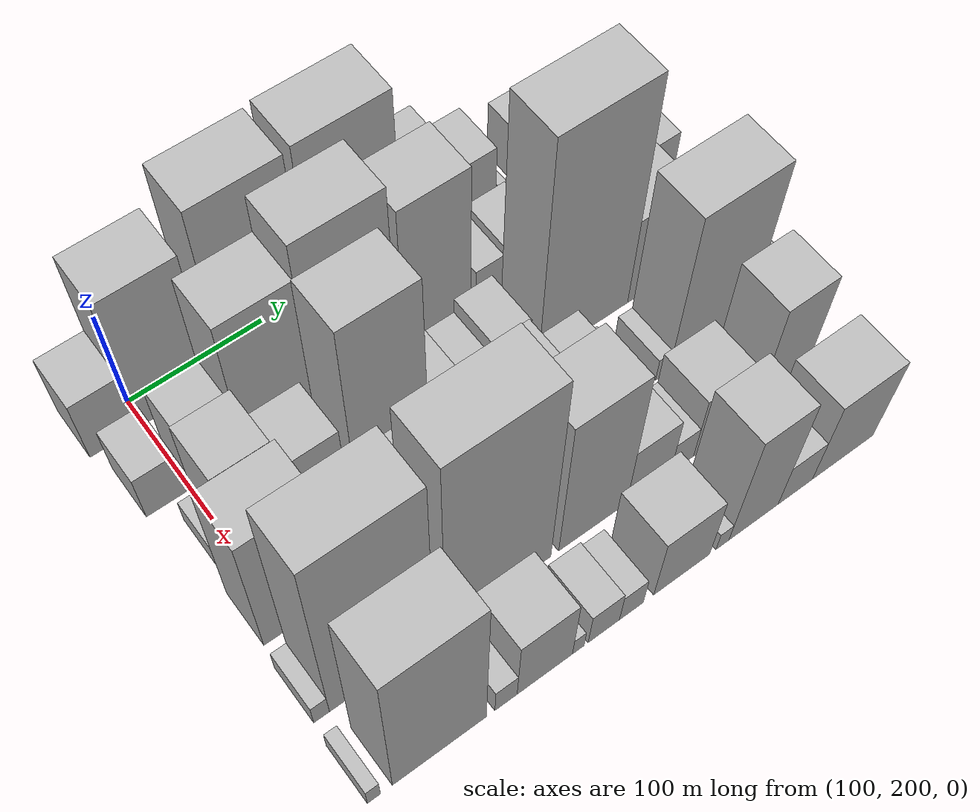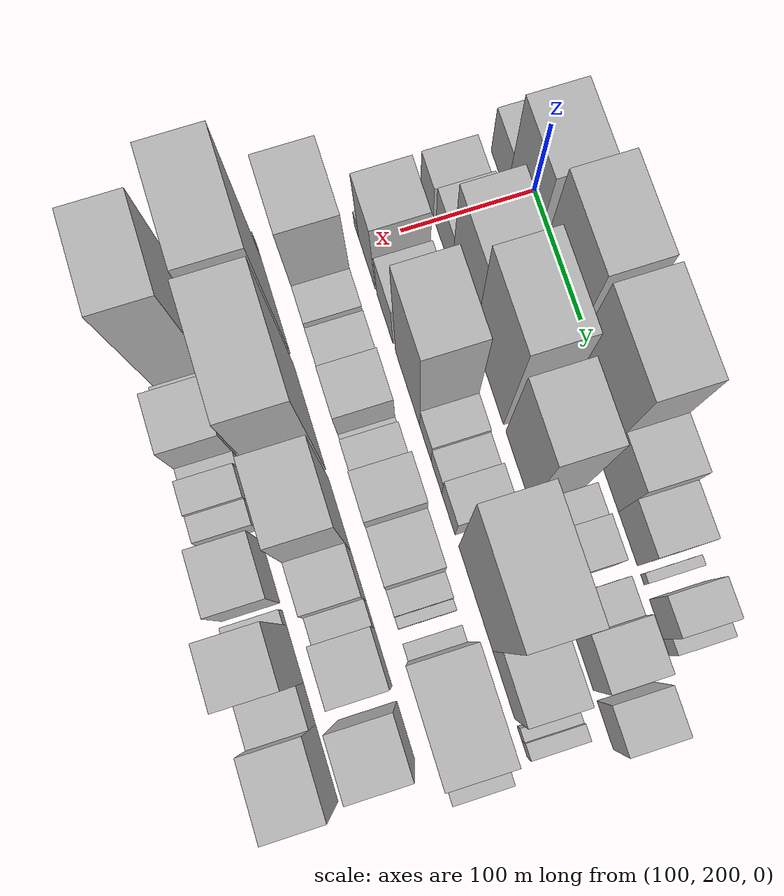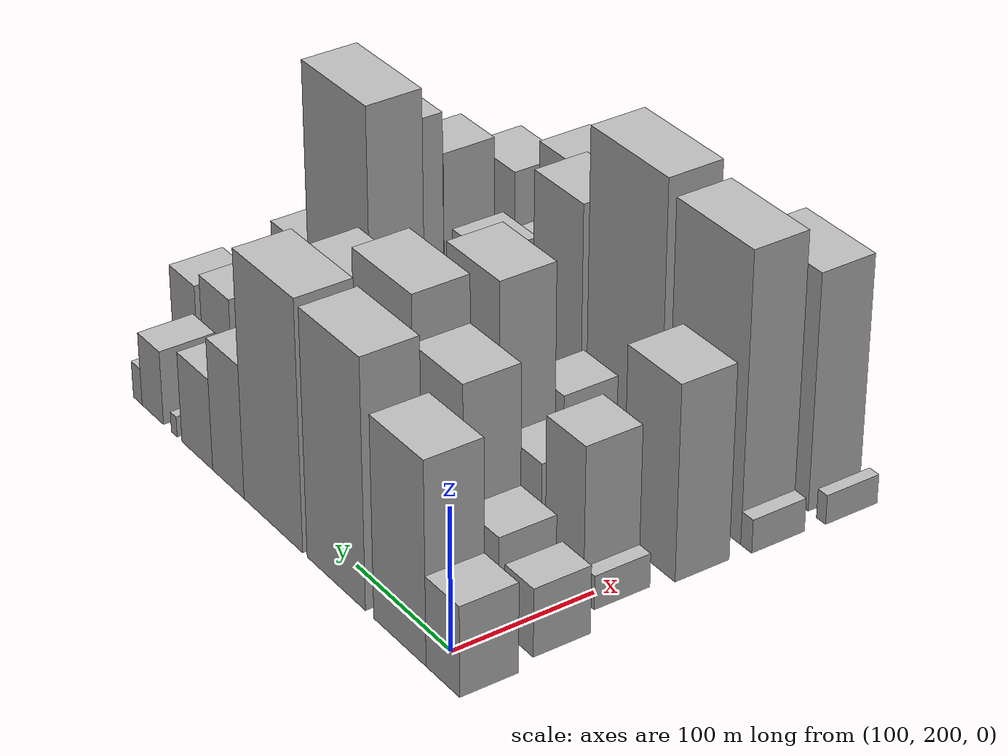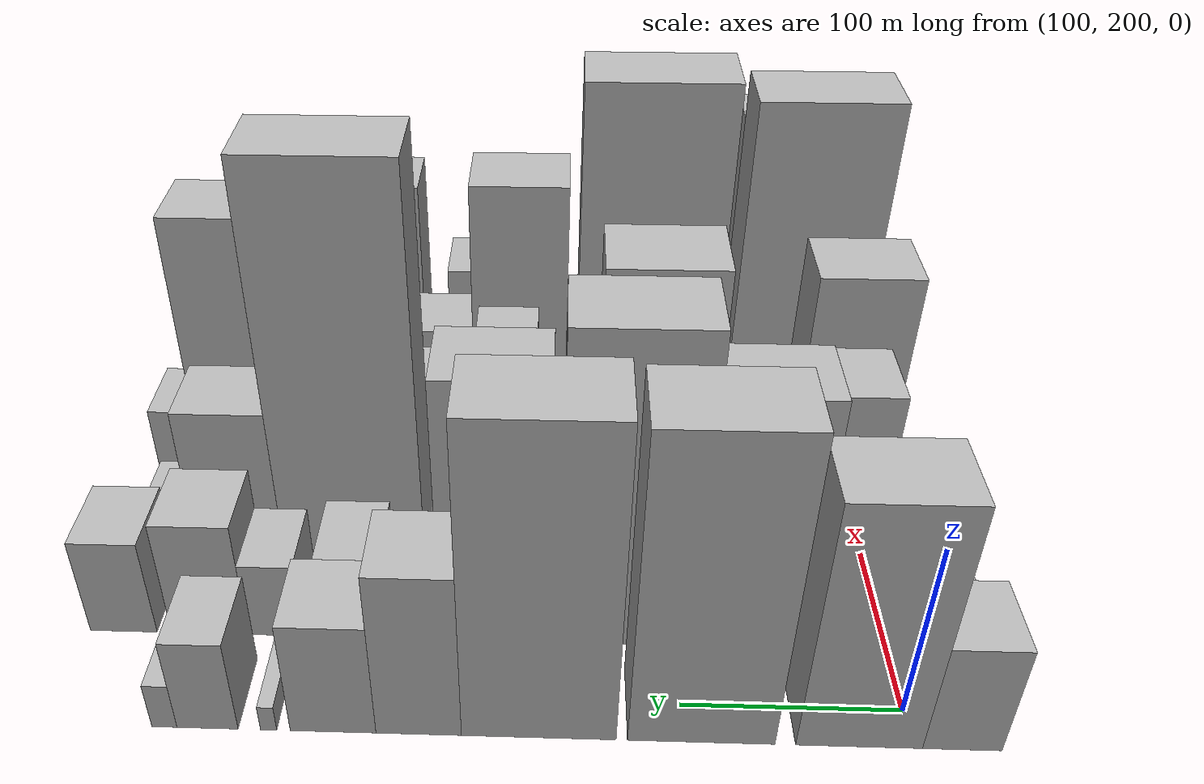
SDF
<sdf version="1.6">
 <world name="default">
  <model name="building_33">
   <static>1</static>
   <pose>100.0000 178.7573 0 0.000000 0.000000 0.000000</pose>
   <link name="link">
    <pose>0 0 31.50 0 0 0</pose>
    <collision name="collision"><geometry><box><size>40.0000 34.3332 63.0000</size></box></geometry></collision>
    <visual name="visual">
     <cast_shadows>0</cast_shadows>
     <geometry><box><size>40.0000 34.3332 63.0000</size></box></geometry>
     <material>
      <script>
       <uri>model://HANNAS_wall/materials/scripts</uri>
       <uri>model://HANNAS_wall/materials/textures</uri>
       <name>vrc/HANNAS_wall</name>
      </script>
     </material>
    </visual>
   </link>
  </model>
  <model name="building_34">
   <static>1</static>
   <pose>100.0000 223.4274 0 0.000000 0.000000 0.000000</pose>
   <link name="link">
    <pose>0 0 70.50 0 0 0</pose>
    <collision name="collision"><geometry><box><size>40.0000 55.0071 141.0000</size></box></geometry></collision>
    <visual name="visual">
     <cast_shadows>0</cast_shadows>
     <geometry><box><size>40.0000 55.0071 141.0000</size></box></geometry>
     <material>
      <script>
       <uri>model://HANNAS_wall/materials/scripts</uri>
       <uri>model://HANNAS_wall/materials/textures</uri>
       <name>vrc/HANNAS_wall</name>
      </script>
     </material>
    </visual>
   </link>
  </model>
  <model name="building_35">
   <static>1</static>
   <pose>100.0000 292.1436 0 0.000000 0.000000 0.000000</pose>
   <link name="link">
    <pose>0 0 87.00 0 0 0</pose>
    <collision name="collision"><geometry><box><size>40.0000 64.4253 174.0000</size></box></geometry></collision>
    <visual name="visual">
     <cast_shadows>0</cast_shadows>
     <geometry><box><size>40.0000 64.4253 174.0000</size></box></geometry>
     <material>
      <script>
       <uri>model://HANNAS_wall/materials/scripts</uri>
       <uri>model://HANNAS_wall/materials/textures</uri>
       <name>vrc/HANNAS_wall</name>
      </script>
     </material>
    </visual>
   </link>
  </model>
  <model name="building_36">
   <static>1</static>
   <pose>100.0000 363.3790 0 0.000000 0.000000 0.000000</pose>
   <link name="link">
    <pose>0 0 88.50 0 0 0</pose>
    <collision name="collision"><geometry><box><size>40.0000 68.0455 177.0000</size></box></geometry></collision>
    <visual name="visual">
     <cast_shadows>0</cast_shadows>
     <geometry><box><size>40.0000 68.0455 177.0000</size></box></geometry>
     <material>
      <script>
       <uri>model://HANNAS_wall/materials/scripts</uri>
       <uri>model://HANNAS_wall/materials/textures</uri>
       <name>vrc/HANNAS_wall</name>
      </script>
     </material>
    </visual>
   </link>
  </model>
  <model name="building_37">
   <static>1</static>
   <pose>100.0000 416.3116 0 0.000000 0.000000 0.000000</pose>
   <link name="link">
    <pose>0 0 48.00 0 0 0</pose>
    <collision name="collision"><geometry><box><size>40.0000 37.8197 96.0000</size></box></geometry></collision>
    <visual name="visual">
     <cast_shadows>0</cast_shadows>
     <geometry><box><size>40.0000 37.8197 96.0000</size></box></geometry>
     <material>
      <script>
       <uri>model://HANNAS_wall/materials/scripts</uri>
       <uri>model://HANNAS_wall/materials/textures</uri>
       <name>vrc/HANNAS_wall</name>
      </script>
     </material>
    </visual>
   </link>
  </model>
  <model name="building_38">
   <static>1</static>
   <pose>100.0000 454.2458 0 0.000000 0.000000 0.000000</pose>
   <link name="link">
    <pose>0 0 33.00 0 0 0</pose>
    <collision name="collision"><geometry><box><size>40.0000 38.0487 66.0000</size></box></geometry></collision>
    <visual name="visual">
     <cast_shadows>0</cast_shadows>
     <geometry><box><size>40.0000 38.0487 66.0000</size></box></geometry>
     <material>
      <script>
       <uri>model://HANNAS_wall/materials/scripts</uri>
       <uri>model://HANNAS_wall/materials/textures</uri>
       <name>vrc/HANNAS_wall</name>
      </script>
     </material>
    </visual>
   </link>
  </model>
  <model name="building_39">
   <static>1</static>
   <pose>100.0000 482.8758 0 0.000000 0.000000 0.000000</pose>
   <link name="link">
    <pose>0 0 7.50 0 0 0</pose>
    <collision name="collision"><geometry><box><size>40.0000 7.2112 15.0000</size></box></geometry></collision>
    <visual name="visual">
     <cast_shadows>0</cast_shadows>
     <geometry><box><size>40.0000 7.2112 15.0000</size></box></geometry>
     <material>
      <script>
       <uri>model://HANNAS_wall/materials/scripts</uri>
       <uri>model://HANNAS_wall/materials/textures</uri>
       <name>vrc/HANNAS_wall</name>
      </script>
     </material>
    </visual>
   </link>
  </model>
  <model name="building_40">
   <static>1</static>
   <pose>100.0000 510.1323 0 0.000000 0.000000 0.000000</pose>
   <link name="link">
    <pose>0 0 27.00 0 0 0</pose>
    <collision name="collision"><geometry><box><size>40.0000 27.3020 54.0000</size></box></geometry></collision>
    <visual name="visual">
     <cast_shadows>0</cast_shadows>
     <geometry><box><size>40.0000 27.3020 54.0000</size></box></geometry>
     <material>
      <script>
       <uri>model://HANNAS_wall/materials/scripts</uri>
       <uri>model://HANNAS_wall/materials/textures</uri>
       <name>vrc/HANNAS_wall</name>
      </script>
     </material>
    </visual>
   </link>
  </model>
  <model name="building_41">
   <static>1</static>
   <pose>100.0000 529.4038 0 0.000000 0.000000 0.000000</pose>
   <link name="link">
    <pose>0 0 13.50 0 0 0</pose>
    <collision name="collision"><geometry><box><size>40.0000 11.2409 27.0000</size></box></geometry></collision>
    <visual name="visual">
     <cast_shadows>0</cast_shadows>
     <geometry><box><size>40.0000 11.2409 27.0000</size></box></geometry>
     <material>
      <script>
       <uri>model://HANNAS_wall/materials/scripts</uri>
       <uri>model://HANNAS_wall/materials/textures</uri>
       <name>vrc/HANNAS_wall</name>
      </script>
     </material>
    </visual>
   </link>
  </model>
  <model name="building_88">
   <static>1</static>
   <pose>155.0000 182.9311 0 0.000000 0.000000 0.000000</pose>
   <link name="link">
    <pose>0 0 24.00 0 0 0</pose>
    <collision name="collision"><geometry><box><size>40.0000 28.5312 48.0000</size></box></geometry></collision>
    <visual name="visual">
     <cast_shadows>0</cast_shadows>
     <geometry><box><size>40.0000 28.5312 48.0000</size></box></geometry>
     <material>
      <script>
       <uri>model://HANNAS_wall/materials/scripts</uri>
       <uri>model://HANNAS_wall/materials/textures</uri>
       <name>vrc/HANNAS_wall</name>
      </script>
     </material>
    </visual>
   </link>
  </model>
  <model name="building_89">
   <static>1</static>
   <pose>155.0000 221.2587 0 0.000000 0.000000 0.000000</pose>
   <link name="link">
    <pose>0 0 31.50 0 0 0</pose>
    <collision name="collision"><geometry><box><size>40.0000 36.1242 63.0000</size></box></geometry></collision>
    <visual name="visual">
     <cast_shadows>0</cast_shadows>
     <geometry><box><size>40.0000 36.1242 63.0000</size></box></geometry>
     <material>
      <script>
       <uri>model://HANNAS_wall/materials/scripts</uri>
       <uri>model://HANNAS_wall/materials/textures</uri>
       <name>vrc/HANNAS_wall</name>
      </script>
     </material>
    </visual>
   </link>
  </model>
  <model name="building_90">
   <static>1</static>
   <pose>155.0000 265.2588 0 0.000000 0.000000 0.000000</pose>
   <link name="link">
    <pose>0 0 73.50 0 0 0</pose>
    <collision name="collision"><geometry><box><size>40.0000 51.8759 147.0000</size></box></geometry></collision>
    <visual name="visual">
     <cast_shadows>0</cast_shadows>
     <geometry><box><size>40.0000 51.8759 147.0000</size></box></geometry>
     <material>
      <script>
       <uri>model://HANNAS_wall/materials/scripts</uri>
       <uri>model://HANNAS_wall/materials/textures</uri>
       <name>vrc/HANNAS_wall</name>
      </script>
     </material>
    </visual>
   </link>
  </model>
  <model name="building_91">
   <static>1</static>
   <pose>155.0000 322.8610 0 0.000000 0.000000 0.000000</pose>
   <link name="link">
    <pose>0 0 90.00 0 0 0</pose>
    <collision name="collision"><geometry><box><size>40.0000 63.3285 180.0000</size></box></geometry></collision>
    <visual name="visual">
     <cast_shadows>0</cast_shadows>
     <geometry><box><size>40.0000 63.3285 180.0000</size></box></geometry>
     <material>
      <script>
       <uri>model://HANNAS_wall/materials/scripts</uri>
       <uri>model://HANNAS_wall/materials/textures</uri>
       <name>vrc/HANNAS_wall</name>
      </script>
     </material>
    </visual>
   </link>
  </model>
  <model name="building_92">
   <static>1</static>
   <pose>155.0000 385.5557 0 0.000000 0.000000 0.000000</pose>
   <link name="link">
    <pose>0 0 76.50 0 0 0</pose>
    <collision name="collision"><geometry><box><size>40.0000 52.0610 153.0000</size></box></geometry></collision>
    <visual name="visual">
     <cast_shadows>0</cast_shadows>
     <geometry><box><size>40.0000 52.0610 153.0000</size></box></geometry>
     <material>
      <script>
       <uri>model://HANNAS_wall/materials/scripts</uri>
       <uri>model://HANNAS_wall/materials/textures</uri>
       <name>vrc/HANNAS_wall</name>
      </script>
     </material>
    </visual>
   </link>
  </model>
  <model name="building_93">
   <static>1</static>
   <pose>155.0000 426.6542 0 0.000000 0.000000 0.000000</pose>
   <link name="link">
    <pose>0 0 21.00 0 0 0</pose>
    <collision name="collision"><geometry><box><size>40.0000 22.1360 42.0000</size></box></geometry></collision>
    <visual name="visual">
     <cast_shadows>0</cast_shadows>
     <geometry><box><size>40.0000 22.1360 42.0000</size></box></geometry>
     <material>
      <script>
       <uri>model://HANNAS_wall/materials/scripts</uri>
       <uri>model://HANNAS_wall/materials/textures</uri>
       <name>vrc/HANNAS_wall</name>
      </script>
     </material>
    </visual>
   </link>
  </model>
  <model name="building_94">
   <static>1</static>
   <pose>155.0000 453.0144 0 0.000000 0.000000 0.000000</pose>
   <link name="link">
    <pose>0 0 25.50 0 0 0</pose>
    <collision name="collision"><geometry><box><size>40.0000 30.5845 51.0000</size></box></geometry></collision>
    <visual name="visual">
     <cast_shadows>0</cast_shadows>
     <geometry><box><size>40.0000 30.5845 51.0000</size></box></geometry>
     <material>
      <script>
       <uri>model://HANNAS_wall/materials/scripts</uri>
       <uri>model://HANNAS_wall/materials/textures</uri>
       <name>vrc/HANNAS_wall</name>
      </script>
     </material>
    </visual>
   </link>
  </model>
  <model name="building_95">
   <static>1</static>
   <pose>155.0000 491.1433 0 0.000000 0.000000 0.000000</pose>
   <link name="link">
    <pose>0 0 22.50 0 0 0</pose>
    <collision name="collision"><geometry><box><size>40.0000 25.6733 45.0000</size></box></geometry></collision>
    <visual name="visual">
     <cast_shadows>0</cast_shadows>
     <geometry><box><size>40.0000 25.6733 45.0000</size></box></geometry>
     <material>
      <script>
       <uri>model://HANNAS_wall/materials/scripts</uri>
       <uri>model://HANNAS_wall/materials/textures</uri>
       <name>vrc/HANNAS_wall</name>
      </script>
     </material>
    </visual>
   </link>
  </model>
  <model name="building_96">
   <static>1</static>
   <pose>155.0000 522.5693 0 0.000000 0.000000 0.000000</pose>
   <link name="link">
    <pose>0 0 34.50 0 0 0</pose>
    <collision name="collision"><geometry><box><size>40.0000 37.1787 69.0000</size></box></geometry></collision>
    <visual name="visual">
     <cast_shadows>0</cast_shadows>
     <geometry><box><size>40.0000 37.1787 69.0000</size></box></geometry>
     <material>
      <script>
       <uri>model://HANNAS_wall/materials/scripts</uri>
       <uri>model://HANNAS_wall/materials/textures</uri>
       <name>vrc/HANNAS_wall</name>
      </script>
     </material>
    </visual>
   </link>
  </model>
  <model name="building_97">
   <static>1</static>
   <pose>155.0000 564.3229 0 0.000000 0.000000 0.000000</pose>
   <link name="link">
    <pose>0 0 28.50 0 0 0</pose>
    <collision name="collision"><geometry><box><size>40.0000 32.3285 57.0000</size></box></geometry></collision>
    <visual name="visual">
     <cast_shadows>0</cast_shadows>
     <geometry><box><size>40.0000 32.3285 57.0000</size></box></geometry>
     <material>
      <script>
       <uri>model://HANNAS_wall/materials/scripts</uri>
       <uri>model://HANNAS_wall/materials/textures</uri>
       <name>vrc/HANNAS_wall</name>
      </script>
     </material>
    </visual>
   </link>
  </model>
  <model name="building_135">
   <static>1</static>
   <pose>210.0000 191.1290 0 0.000000 0.000000 0.000000</pose>
   <link name="link">
    <pose>0 0 12.00 0 0 0</pose>
    <collision name="collision"><geometry><box><size>40.0000 10.7766 24.0000</size></box></geometry></collision>
    <visual name="visual">
     <cast_shadows>0</cast_shadows>
     <geometry><box><size>40.0000 10.7766 24.0000</size></box></geometry>
     <material>
      <script>
       <uri>model://HANNAS_wall/materials/scripts</uri>
       <uri>model://HANNAS_wall/materials/textures</uri>
       <name>vrc/HANNAS_wall</name>
      </script>
     </material>
    </visual>
   </link>
  </model>
  <model name="building_136">
   <static>1</static>
   <pose>210.0000 215.9835 0 0.000000 0.000000 0.000000</pose>
   <link name="link">
    <pose>0 0 54.00 0 0 0</pose>
    <collision name="collision"><geometry><box><size>40.0000 38.9324 108.0000</size></box></geometry></collision>
    <visual name="visual">
     <cast_shadows>0</cast_shadows>
     <geometry><box><size>40.0000 38.9324 108.0000</size></box></geometry>
     <material>
      <script>
       <uri>model://HANNAS_wall/materials/scripts</uri>
       <uri>model://HANNAS_wall/materials/textures</uri>
       <name>vrc/HANNAS_wall</name>
      </script>
     </material>
    </visual>
   </link>
  </model>
  <model name="building_137">
   <static>1</static>
   <pose>210.0000 258.2065 0 0.000000 0.000000 0.000000</pose>
   <link name="link">
    <pose>0 0 36.00 0 0 0</pose>
    <collision name="collision"><geometry><box><size>40.0000 37.5137 72.0000</size></box></geometry></collision>
    <visual name="visual">
     <cast_shadows>0</cast_shadows>
     <geometry><box><size>40.0000 37.5137 72.0000</size></box></geometry>
     <material>
      <script>
       <uri>model://HANNAS_wall/materials/scripts</uri>
       <uri>model://HANNAS_wall/materials/textures</uri>
       <name>vrc/HANNAS_wall</name>
      </script>
     </material>
    </visual>
   </link>
  </model>
  <model name="building_138">
   <static>1</static>
   <pose>210.0000 310.6371 0 0.000000 0.000000 0.000000</pose>
   <link name="link">
    <pose>0 0 87.00 0 0 0</pose>
    <collision name="collision"><geometry><box><size>40.0000 55.3474 174.0000</size></box></geometry></collision>
    <visual name="visual">
     <cast_shadows>0</cast_shadows>
     <geometry><box><size>40.0000 55.3474 174.0000</size></box></geometry>
     <material>
      <script>
       <uri>model://HANNAS_wall/materials/scripts</uri>
       <uri>model://HANNAS_wall/materials/textures</uri>
       <name>vrc/HANNAS_wall</name>
      </script>
     </material>
    </visual>
   </link>
  </model>
  <model name="building_139">
   <static>1</static>
   <pose>210.0000 351.0600 0 0.000000 0.000000 0.000000</pose>
   <link name="link">
    <pose>0 0 24.00 0 0 0</pose>
    <collision name="collision"><geometry><box><size>40.0000 25.4983 48.0000</size></box></geometry></collision>
    <visual name="visual">
     <cast_shadows>0</cast_shadows>
     <geometry><box><size>40.0000 25.4983 48.0000</size></box></geometry>
     <material>
      <script>
       <uri>model://HANNAS_wall/materials/scripts</uri>
       <uri>model://HANNAS_wall/materials/textures</uri>
       <name>vrc/HANNAS_wall</name>
      </script>
     </material>
    </visual>
   </link>
  </model>
  <model name="building_140">
   <static>1</static>
   <pose>210.0000 375.6668 0 0.000000 0.000000 0.000000</pose>
   <link name="link">
    <pose>0 0 21.00 0 0 0</pose>
    <collision name="collision"><geometry><box><size>40.0000 23.7154 42.0000</size></box></geometry></collision>
    <visual name="visual">
     <cast_shadows>0</cast_shadows>
     <geometry><box><size>40.0000 23.7154 42.0000</size></box></geometry>
     <material>
      <script>
       <uri>model://HANNAS_wall/materials/scripts</uri>
       <uri>model://HANNAS_wall/materials/textures</uri>
       <name>vrc/HANNAS_wall</name>
      </script>
     </material>
    </visual>
   </link>
  </model>
  <model name="building_141">
   <static>1</static>
   <pose>210.0000 402.0257 0 0.000000 0.000000 0.000000</pose>
   <link name="link">
    <pose>0 0 28.50 0 0 0</pose>
    <collision name="collision"><geometry><box><size>40.0000 29.0023 57.0000</size></box></geometry></collision>
    <visual name="visual">
     <cast_shadows>0</cast_shadows>
     <geometry><box><size>40.0000 29.0023 57.0000</size></box></geometry>
     <material>
      <script>
       <uri>model://HANNAS_wall/materials/scripts</uri>
       <uri>model://HANNAS_wall/materials/textures</uri>
       <name>vrc/HANNAS_wall</name>
      </script>
     </material>
    </visual>
   </link>
  </model>
  <model name="building_142">
   <static>1</static>
   <pose>210.0000 460.9334 0 0.000000 0.000000 0.000000</pose>
   <link name="link">
    <pose>0 0 112.50 0 0 0</pose>
    <collision name="collision"><geometry><box><size>40.0000 72.8131 225.0000</size></box></geometry></collision>
    <visual name="visual">
     <cast_shadows>0</cast_shadows>
     <geometry><box><size>40.0000 72.8131 225.0000</size></box></geometry>
     <material>
      <script>
       <uri>model://HANNAS_wall/materials/scripts</uri>
       <uri>model://HANNAS_wall/materials/textures</uri>
       <name>vrc/HANNAS_wall</name>
      </script>
     </material>
    </visual>
   </link>
  </model>
  <model name="building_143">
   <static>1</static>
   <pose>210.0000 519.9658 0 0.000000 0.000000 0.000000</pose>
   <link name="link">
    <pose>0 0 45.00 0 0 0</pose>
    <collision name="collision"><geometry><box><size>40.0000 45.2517 90.0000</size></box></geometry></collision>
    <visual name="visual">
     <cast_shadows>0</cast_shadows>
     <geometry><box><size>40.0000 45.2517 90.0000</size></box></geometry>
     <material>
      <script>
       <uri>model://HANNAS_wall/materials/scripts</uri>
       <uri>model://HANNAS_wall/materials/textures</uri>
       <name>vrc/HANNAS_wall</name>
      </script>
     </material>
    </visual>
   </link>
  </model>
  <model name="building_144">
   <static>1</static>
   <pose>210.0000 552.2005 0 0.000000 0.000000 0.000000</pose>
   <link name="link">
    <pose>0 0 10.50 0 0 0</pose>
    <collision name="collision"><geometry><box><size>40.0000 9.2176 21.0000</size></box></geometry></collision>
    <visual name="visual">
     <cast_shadows>0</cast_shadows>
     <geometry><box><size>40.0000 9.2176 21.0000</size></box></geometry>
     <material>
      <script>
       <uri>model://HANNAS_wall/materials/scripts</uri>
       <uri>model://HANNAS_wall/materials/textures</uri>
       <name>vrc/HANNAS_wall</name>
      </script>
     </material>
    </visual>
   </link>
  </model>
  <model name="building_145">
   <static>1</static>
   <pose>210.0000 562.4407 0 0.000000 0.000000 0.000000</pose>
   <link name="link">
    <pose>0 0 13.50 0 0 0</pose>
    <collision name="collision"><geometry><box><size>40.0000 11.2628 27.0000</size></box></geometry></collision>
    <visual name="visual">
     <cast_shadows>0</cast_shadows>
     <geometry><box><size>40.0000 11.2628 27.0000</size></box></geometry>
     <material>
      <script>
       <uri>model://HANNAS_wall/materials/scripts</uri>
       <uri>model://HANNAS_wall/materials/textures</uri>
       <name>vrc/HANNAS_wall</name>
      </script>
     </material>
    </visual>
   </link>
  </model>
  <model name="building_187">
   <static>1</static>
   <pose>265.0000 206.9194 0 0.000000 0.000000 0.000000</pose>
   <link name="link">
    <pose>0 0 69.00 0 0 0</pose>
    <collision name="collision"><geometry><box><size>40.0000 51.5101 138.0000</size></box></geometry></collision>
    <visual name="visual">
     <cast_shadows>0</cast_shadows>
     <geometry><box><size>40.0000 51.5101 138.0000</size></box></geometry>
     <material>
      <script>
       <uri>model://HANNAS_wall/materials/scripts</uri>
       <uri>model://HANNAS_wall/materials/textures</uri>
       <name>vrc/HANNAS_wall</name>
      </script>
     </material>
    </visual>
   </link>
  </model>
  <model name="building_188">
   <static>1</static>
   <pose>265.0000 246.1705 0 0.000000 0.000000 0.000000</pose>
   <link name="link">
    <pose>0 0 24.00 0 0 0</pose>
    <collision name="collision"><geometry><box><size>40.0000 26.9921 48.0000</size></box></geometry></collision>
    <visual name="visual">
     <cast_shadows>0</cast_shadows>
     <geometry><box><size>40.0000 26.9921 48.0000</size></box></geometry>
     <material>
      <script>
       <uri>model://HANNAS_wall/materials/scripts</uri>
       <uri>model://HANNAS_wall/materials/textures</uri>
       <name>vrc/HANNAS_wall</name>
      </script>
     </material>
    </visual>
   </link>
  </model>
  <model name="building_189">
   <static>1</static>
   <pose>265.0000 276.8639 0 0.000000 0.000000 0.000000</pose>
   <link name="link">
    <pose>0 0 24.00 0 0 0</pose>
    <collision name="collision"><geometry><box><size>40.0000 28.3947 48.0000</size></box></geometry></collision>
    <visual name="visual">
     <cast_shadows>0</cast_shadows>
     <geometry><box><size>40.0000 28.3947 48.0000</size></box></geometry>
     <material>
      <script>
       <uri>model://HANNAS_wall/materials/scripts</uri>
       <uri>model://HANNAS_wall/materials/textures</uri>
       <name>vrc/HANNAS_wall</name>
      </script>
     </material>
    </visual>
   </link>
  </model>
  <model name="building_190">
   <static>1</static>
   <pose>265.0000 312.7901 0 0.000000 0.000000 0.000000</pose>
   <link name="link">
    <pose>0 0 34.50 0 0 0</pose>
    <collision name="collision"><geometry><box><size>40.0000 35.4576 69.0000</size></box></geometry></collision>
    <visual name="visual">
     <cast_shadows>0</cast_shadows>
     <geometry><box><size>40.0000 35.4576 69.0000</size></box></geometry>
     <material>
      <script>
       <uri>model://HANNAS_wall/materials/scripts</uri>
       <uri>model://HANNAS_wall/materials/textures</uri>
       <name>vrc/HANNAS_wall</name>
      </script>
     </material>
    </visual>
   </link>
  </model>
  <model name="building_191">
   <static>1</static>
   <pose>265.0000 334.6997 0 0.000000 0.000000 0.000000</pose>
   <link name="link">
    <pose>0 0 9.00 0 0 0</pose>
    <collision name="collision"><geometry><box><size>40.0000 8.3617 18.0000</size></box></geometry></collision>
    <visual name="visual">
     <cast_shadows>0</cast_shadows>
     <geometry><box><size>40.0000 8.3617 18.0000</size></box></geometry>
     <material>
      <script>
       <uri>model://HANNAS_wall/materials/scripts</uri>
       <uri>model://HANNAS_wall/materials/textures</uri>
       <name>vrc/HANNAS_wall</name>
      </script>
     </material>
    </visual>
   </link>
  </model>
  <model name="building_192">
   <static>1</static>
   <pose>265.0000 349.8972 0 0.000000 0.000000 0.000000</pose>
   <link name="link">
    <pose>0 0 21.00 0 0 0</pose>
    <collision name="collision"><geometry><box><size>40.0000 22.0332 42.0000</size></box></geometry></collision>
    <visual name="visual">
     <cast_shadows>0</cast_shadows>
     <geometry><box><size>40.0000 22.0332 42.0000</size></box></geometry>
     <material>
      <script>
       <uri>model://HANNAS_wall/materials/scripts</uri>
       <uri>model://HANNAS_wall/materials/textures</uri>
       <name>vrc/HANNAS_wall</name>
      </script>
     </material>
    </visual>
   </link>
  </model>
  <model name="building_193">
   <static>1</static>
   <pose>265.0000 384.9872 0 0.000000 0.000000 0.000000</pose>
   <link name="link">
    <pose>0 0 46.50 0 0 0</pose>
    <collision name="collision"><geometry><box><size>40.0000 32.1469 93.0000</size></box></geometry></collision>
    <visual name="visual">
     <cast_shadows>0</cast_shadows>
     <geometry><box><size>40.0000 32.1469 93.0000</size></box></geometry>
     <material>
      <script>
       <uri>model://HANNAS_wall/materials/scripts</uri>
       <uri>model://HANNAS_wall/materials/textures</uri>
       <name>vrc/HANNAS_wall</name>
      </script>
     </material>
    </visual>
   </link>
  </model>
  <model name="building_194">
   <static>1</static>
   <pose>265.0000 420.1829 0 0.000000 0.000000 0.000000</pose>
   <link name="link">
    <pose>0 0 33.00 0 0 0</pose>
    <collision name="collision"><geometry><box><size>40.0000 38.2445 66.0000</size></box></geometry></collision>
    <visual name="visual">
     <cast_shadows>0</cast_shadows>
     <geometry><box><size>40.0000 38.2445 66.0000</size></box></geometry>
     <material>
      <script>
       <uri>model://HANNAS_wall/materials/scripts</uri>
       <uri>model://HANNAS_wall/materials/textures</uri>
       <name>vrc/HANNAS_wall</name>
      </script>
     </material>
    </visual>
   </link>
  </model>
  <model name="building_195">
   <static>1</static>
   <pose>265.0000 448.1857 0 0.000000 0.000000 0.000000</pose>
   <link name="link">
    <pose>0 0 15.00 0 0 0</pose>
    <collision name="collision"><geometry><box><size>40.0000 17.7611 30.0000</size></box></geometry></collision>
    <visual name="visual">
     <cast_shadows>0</cast_shadows>
     <geometry><box><size>40.0000 17.7611 30.0000</size></box></geometry>
     <material>
      <script>
       <uri>model://HANNAS_wall/materials/scripts</uri>
       <uri>model://HANNAS_wall/materials/textures</uri>
       <name>vrc/HANNAS_wall</name>
      </script>
     </material>
    </visual>
   </link>
  </model>
  <model name="building_196">
   <static>1</static>
   <pose>265.0000 460.9426 0 0.000000 0.000000 0.000000</pose>
   <link name="link">
    <pose>0 0 9.00 0 0 0</pose>
    <collision name="collision"><geometry><box><size>40.0000 7.7528 18.0000</size></box></geometry></collision>
    <visual name="visual">
     <cast_shadows>0</cast_shadows>
     <geometry><box><size>40.0000 7.7528 18.0000</size></box></geometry>
     <material>
      <script>
       <uri>model://HANNAS_wall/materials/scripts</uri>
       <uri>model://HANNAS_wall/materials/textures</uri>
       <name>vrc/HANNAS_wall</name>
      </script>
     </material>
    </visual>
   </link>
  </model>
  <model name="building_197">
   <static>1</static>
   <pose>265.0000 480.4756 0 0.000000 0.000000 0.000000</pose>
   <link name="link">
    <pose>0 0 12.00 0 0 0</pose>
    <collision name="collision"><geometry><box><size>40.0000 11.3132 24.0000</size></box></geometry></collision>
    <visual name="visual">
     <cast_shadows>0</cast_shadows>
     <geometry><box><size>40.0000 11.3132 24.0000</size></box></geometry>
     <material>
      <script>
       <uri>model://HANNAS_wall/materials/scripts</uri>
       <uri>model://HANNAS_wall/materials/textures</uri>
       <name>vrc/HANNAS_wall</name>
      </script>
     </material>
    </visual>
   </link>
  </model>
  <model name="building_198">
   <static>1</static>
   <pose>265.0000 518.9437 0 0.000000 0.000000 0.000000</pose>
   <link name="link">
    <pose>0 0 82.50 0 0 0</pose>
    <collision name="collision"><geometry><box><size>40.0000 65.6228 165.0000</size></box></geometry></collision>
    <visual name="visual">
     <cast_shadows>0</cast_shadows>
     <geometry><box><size>40.0000 65.6228 165.0000</size></box></geometry>
     <material>
      <script>
       <uri>model://HANNAS_wall/materials/scripts</uri>
       <uri>model://HANNAS_wall/materials/textures</uri>
       <name>vrc/HANNAS_wall</name>
      </script>
     </material>
    </visual>
   </link>
  </model>
  <model name="building_199">
   <static>1</static>
   <pose>265.0000 563.8854 0 0.000000 0.000000 0.000000</pose>
   <link name="link">
    <pose>0 0 24.00 0 0 0</pose>
    <collision name="collision"><geometry><box><size>40.0000 24.2607 48.0000</size></box></geometry></collision>
    <visual name="visual">
     <cast_shadows>0</cast_shadows>
     <geometry><box><size>40.0000 24.2607 48.0000</size></box></geometry>
     <material>
      <script>
       <uri>model://HANNAS_wall/materials/scripts</uri>
       <uri>model://HANNAS_wall/materials/textures</uri>
       <name>vrc/HANNAS_wall</name>
      </script>
     </material>
    </visual>
   </link>
  </model>
  <model name="building_239">
   <static>1</static>
   <pose>320.0000 184.0399 0 0.000000 0.000000 0.000000</pose>
   <link name="link">
    <pose>0 0 12.00 0 0 0</pose>
    <collision name="collision"><geometry><box><size>40.0000 10.7041 24.0000</size></box></geometry></collision>
    <visual name="visual">
     <cast_shadows>0</cast_shadows>
     <geometry><box><size>40.0000 10.7041 24.0000</size></box></geometry>
     <material>
      <script>
       <uri>model://HANNAS_wall/materials/scripts</uri>
       <uri>model://HANNAS_wall/materials/textures</uri>
       <name>vrc/HANNAS_wall</name>
      </script>
     </material>
    </visual>
   </link>
  </model>
  <model name="building_240">
   <static>1</static>
   <pose>320.0000 225.8657 0 0.000000 0.000000 0.000000</pose>
   <link name="link">
    <pose>0 0 102.00 0 0 0</pose>
    <collision name="collision"><geometry><box><size>40.0000 72.9475 204.0000</size></box></geometry></collision>
    <visual name="visual">
     <cast_shadows>0</cast_shadows>
     <geometry><box><size>40.0000 72.9475 204.0000</size></box></geometry>
     <material>
      <script>
       <uri>model://HANNAS_wall/materials/scripts</uri>
       <uri>model://HANNAS_wall/materials/textures</uri>
       <name>vrc/HANNAS_wall</name>
      </script>
     </material>
    </visual>
   </link>
  </model>
  <model name="building_241">
   <static>1</static>
   <pose>320.0000 309.0698 0 0.000000 0.000000 0.000000</pose>
   <link name="link">
    <pose>0 0 106.50 0 0 0</pose>
    <collision name="collision"><geometry><box><size>40.0000 77.4607 213.0000</size></box></geometry></collision>
    <visual name="visual">
     <cast_shadows>0</cast_shadows>
     <geometry><box><size>40.0000 77.4607 213.0000</size></box></geometry>
     <material>
      <script>
       <uri>model://HANNAS_wall/materials/scripts</uri>
       <uri>model://HANNAS_wall/materials/textures</uri>
       <name>vrc/HANNAS_wall</name>
      </script>
     </material>
    </visual>
   </link>
  </model>
  <model name="building_242">
   <static>1</static>
   <pose>320.0000 379.9215 0 0.000000 0.000000 0.000000</pose>
   <link name="link">
    <pose>0 0 78.00 0 0 0</pose>
    <collision name="collision"><geometry><box><size>40.0000 52.2426 156.0000</size></box></geometry></collision>
    <visual name="visual">
     <cast_shadows>0</cast_shadows>
     <geometry><box><size>40.0000 52.2426 156.0000</size></box></geometry>
     <material>
      <script>
       <uri>model://HANNAS_wall/materials/scripts</uri>
       <uri>model://HANNAS_wall/materials/textures</uri>
       <name>vrc/HANNAS_wall</name>
      </script>
     </material>
    </visual>
   </link>
  </model>
  <model name="building_243">
   <static>1</static>
   <pose>320.0000 423.2208 0 0.000000 0.000000 0.000000</pose>
   <link name="link">
    <pose>0 0 33.00 0 0 0</pose>
    <collision name="collision"><geometry><box><size>40.0000 34.3558 66.0000</size></box></geometry></collision>
    <visual name="visual">
     <cast_shadows>0</cast_shadows>
     <geometry><box><size>40.0000 34.3558 66.0000</size></box></geometry>
     <material>
      <script>
       <uri>model://HANNAS_wall/materials/scripts</uri>
       <uri>model://HANNAS_wall/materials/textures</uri>
       <name>vrc/HANNAS_wall</name>
      </script>
     </material>
    </visual>
   </link>
  </model>
  <model name="building_244">
   <static>1</static>
   <pose>320.0000 449.7119 0 0.000000 0.000000 0.000000</pose>
   <link name="link">
    <pose>0 0 18.00 0 0 0</pose>
    <collision name="collision"><geometry><box><size>40.0000 18.6264 36.0000</size></box></geometry></collision>
    <visual name="visual">
     <cast_shadows>0</cast_shadows>
     <geometry><box><size>40.0000 18.6264 36.0000</size></box></geometry>
     <material>
      <script>
       <uri>model://HANNAS_wall/materials/scripts</uri>
       <uri>model://HANNAS_wall/materials/textures</uri>
       <name>vrc/HANNAS_wall</name>
      </script>
     </material>
    </visual>
   </link>
  </model>
  <model name="building_245">
   <static>1</static>
   <pose>320.0000 478.7748 0 0.000000 0.000000 0.000000</pose>
   <link name="link">
    <pose>0 0 34.50 0 0 0</pose>
    <collision name="collision"><geometry><box><size>40.0000 39.4995 69.0000</size></box></geometry></collision>
    <visual name="visual">
     <cast_shadows>0</cast_shadows>
     <geometry><box><size>40.0000 39.4995 69.0000</size></box></geometry>
     <material>
      <script>
       <uri>model://HANNAS_wall/materials/scripts</uri>
       <uri>model://HANNAS_wall/materials/textures</uri>
       <name>vrc/HANNAS_wall</name>
      </script>
     </material>
    </visual>
   </link>
  </model>
  <model name="building_246">
   <static>1</static>
   <pose>320.0000 528.1051 0 0.000000 0.000000 0.000000</pose>
   <link name="link">
    <pose>0 0 60.00 0 0 0</pose>
    <collision name="collision"><geometry><box><size>40.0000 39.1611 120.0000</size></box></geometry></collision>
    <visual name="visual">
     <cast_shadows>0</cast_shadows>
     <geometry><box><size>40.0000 39.1611 120.0000</size></box></geometry>
     <material>
      <script>
       <uri>model://HANNAS_wall/materials/scripts</uri>
       <uri>model://HANNAS_wall/materials/textures</uri>
       <name>vrc/HANNAS_wall</name>
      </script>
     </material>
    </visual>
   </link>
  </model>
  <model name="building_293">
   <static>1</static>
   <pose>375.0000 181.4547 0 0.000000 0.000000 0.000000</pose>
   <link name="link">
    <pose>0 0 10.50 0 0 0</pose>
    <collision name="collision"><geometry><box><size>40.0000 8.7607 21.0000</size></box></geometry></collision>
    <visual name="visual">
     <cast_shadows>0</cast_shadows>
     <geometry><box><size>40.0000 8.7607 21.0000</size></box></geometry>
     <material>
      <script>
       <uri>model://HANNAS_wall/materials/scripts</uri>
       <uri>model://HANNAS_wall/materials/textures</uri>
       <name>vrc/HANNAS_wall</name>
      </script>
     </material>
    </visual>
   </link>
  </model>
  <model name="building_294">
   <static>1</static>
   <pose>375.0000 226.2371 0 0.000000 0.000000 0.000000</pose>
   <link name="link">
    <pose>0 0 84.00 0 0 0</pose>
    <collision name="collision"><geometry><box><size>40.0000 64.8040 168.0000</size></box></geometry></collision>
    <visual name="visual">
     <cast_shadows>0</cast_shadows>
     <geometry><box><size>40.0000 64.8040 168.0000</size></box></geometry>
     <material>
      <script>
       <uri>model://HANNAS_wall/materials/scripts</uri>
       <uri>model://HANNAS_wall/materials/textures</uri>
       <name>vrc/HANNAS_wall</name>
      </script>
     </material>
    </visual>
   </link>
  </model>
  <model name="building_295">
   <static>1</static>
   <pose>375.0000 272.5200 0 0.000000 0.000000 0.000000</pose>
   <link name="link">
    <pose>0 0 15.00 0 0 0</pose>
    <collision name="collision"><geometry><box><size>40.0000 15.7618 30.0000</size></box></geometry></collision>
    <visual name="visual">
     <cast_shadows>0</cast_shadows>
     <geometry><box><size>40.0000 15.7618 30.0000</size></box></geometry>
     <material>
      <script>
       <uri>model://HANNAS_wall/materials/scripts</uri>
       <uri>model://HANNAS_wall/materials/textures</uri>
       <name>vrc/HANNAS_wall</name>
      </script>
     </material>
    </visual>
   </link>
  </model>
  <model name="building_296">
   <static>1</static>
   <pose>375.0000 300.4045 0 0.000000 0.000000 0.000000</pose>
   <link name="link">
    <pose>0 0 37.50 0 0 0</pose>
    <collision name="collision"><geometry><box><size>40.0000 40.0073 75.0000</size></box></geometry></collision>
    <visual name="visual">
     <cast_shadows>0</cast_shadows>
     <geometry><box><size>40.0000 40.0073 75.0000</size></box></geometry>
     <material>
      <script>
       <uri>model://HANNAS_wall/materials/scripts</uri>
       <uri>model://HANNAS_wall/materials/textures</uri>
       <name>vrc/HANNAS_wall</name>
      </script>
     </material>
    </visual>
   </link>
  </model>
  <model name="building_297">
   <static>1</static>
   <pose>375.0000 324.7166 0 0.000000 0.000000 0.000000</pose>
   <link name="link">
    <pose>0 0 10.50 0 0 0</pose>
    <collision name="collision"><geometry><box><size>40.0000 8.6168 21.0000</size></box></geometry></collision>
    <visual name="visual">
     <cast_shadows>0</cast_shadows>
     <geometry><box><size>40.0000 8.6168 21.0000</size></box></geometry>
     <material>
      <script>
       <uri>model://HANNAS_wall/materials/scripts</uri>
       <uri>model://HANNAS_wall/materials/textures</uri>
       <name>vrc/HANNAS_wall</name>
      </script>
     </material>
    </visual>
   </link>
  </model>
  <model name="building_298">
   <static>1</static>
   <pose>375.0000 343.6456 0 0.000000 0.000000 0.000000</pose>
   <link name="link">
    <pose>0 0 19.50 0 0 0</pose>
    <collision name="collision"><geometry><box><size>40.0000 23.2413 39.0000</size></box></geometry></collision>
    <visual name="visual">
     <cast_shadows>0</cast_shadows>
     <geometry><box><size>40.0000 23.2413 39.0000</size></box></geometry>
     <material>
      <script>
       <uri>model://HANNAS_wall/materials/scripts</uri>
       <uri>model://HANNAS_wall/materials/textures</uri>
       <name>vrc/HANNAS_wall</name>
      </script>
     </material>
    </visual>
   </link>
  </model>
  <model name="building_299">
   <static>1</static>
   <pose>375.0000 364.2510 0 0.000000 0.000000 0.000000</pose>
   <link name="link">
    <pose>0 0 16.50 0 0 0</pose>
    <collision name="collision"><geometry><box><size>40.0000 17.9694 33.0000</size></box></geometry></collision>
    <visual name="visual">
     <cast_shadows>0</cast_shadows>
     <geometry><box><size>40.0000 17.9694 33.0000</size></box></geometry>
     <material>
      <script>
       <uri>model://HANNAS_wall/materials/scripts</uri>
       <uri>model://HANNAS_wall/materials/textures</uri>
       <name>vrc/HANNAS_wall</name>
      </script>
     </material>
    </visual>
   </link>
  </model>
  <model name="building_300">
   <static>1</static>
   <pose>375.0000 402.8003 0 0.000000 0.000000 0.000000</pose>
   <link name="link">
    <pose>0 0 36.00 0 0 0</pose>
    <collision name="collision"><geometry><box><size>40.0000 43.1292 72.0000</size></box></geometry></collision>
    <visual name="visual">
     <cast_shadows>0</cast_shadows>
     <geometry><box><size>40.0000 43.1292 72.0000</size></box></geometry>
     <material>
      <script>
       <uri>model://HANNAS_wall/materials/scripts</uri>
       <uri>model://HANNAS_wall/materials/textures</uri>
       <name>vrc/HANNAS_wall</name>
      </script>
     </material>
    </visual>
   </link>
  </model>
  <model name="building_301">
   <static>1</static>
   <pose>375.0000 434.4581 0 0.000000 0.000000 0.000000</pose>
   <link name="link">
    <pose>0 0 10.50 0 0 0</pose>
    <collision name="collision"><geometry><box><size>40.0000 10.1865 21.0000</size></box></geometry></collision>
    <visual name="visual">
     <cast_shadows>0</cast_shadows>
     <geometry><box><size>40.0000 10.1865 21.0000</size></box></geometry>
     <material>
      <script>
       <uri>model://HANNAS_wall/materials/scripts</uri>
       <uri>model://HANNAS_wall/materials/textures</uri>
       <name>vrc/HANNAS_wall</name>
      </script>
     </material>
    </visual>
   </link>
  </model>
  <model name="building_302">
   <static>1</static>
   <pose>375.0000 459.2505 0 0.000000 0.000000 0.000000</pose>
   <link name="link">
    <pose>0 0 63.00 0 0 0</pose>
    <collision name="collision"><geometry><box><size>40.0000 39.3983 126.0000</size></box></geometry></collision>
    <visual name="visual">
     <cast_shadows>0</cast_shadows>
     <geometry><box><size>40.0000 39.3983 126.0000</size></box></geometry>
     <material>
      <script>
       <uri>model://HANNAS_wall/materials/scripts</uri>
       <uri>model://HANNAS_wall/materials/textures</uri>
       <name>vrc/HANNAS_wall</name>
      </script>
     </material>
    </visual>
   </link>
  </model>
  <model name="building_303">
   <static>1</static>
   <pose>375.0000 492.9253 0 0.000000 0.000000 0.000000</pose>
   <link name="link">
    <pose>0 0 24.00 0 0 0</pose>
    <collision name="collision"><geometry><box><size>40.0000 27.9513 48.0000</size></box></geometry></collision>
    <visual name="visual">
     <cast_shadows>0</cast_shadows>
     <geometry><box><size>40.0000 27.9513 48.0000</size></box></geometry>
     <material>
      <script>
       <uri>model://HANNAS_wall/materials/scripts</uri>
       <uri>model://HANNAS_wall/materials/textures</uri>
       <name>vrc/HANNAS_wall</name>
      </script>
     </material>
    </visual>
   </link>
  </model>
  <model name="building_304">
   <static>1</static>
   <pose>375.0000 532.1633 0 0.000000 0.000000 0.000000</pose>
   <link name="link">
    <pose>0 0 45.00 0 0 0</pose>
    <collision name="collision"><geometry><box><size>40.0000 50.5247 90.0000</size></box></geometry></collision>
    <visual name="visual">
     <cast_shadows>0</cast_shadows>
     <geometry><box><size>40.0000 50.5247 90.0000</size></box></geometry>
     <material>
      <script>
       <uri>model://HANNAS_wall/materials/scripts</uri>
       <uri>model://HANNAS_wall/materials/textures</uri>
       <name>vrc/HANNAS_wall</name>
      </script>
     </material>
    </visual>
   </link>
  </model>
 </world>
</sdf>
